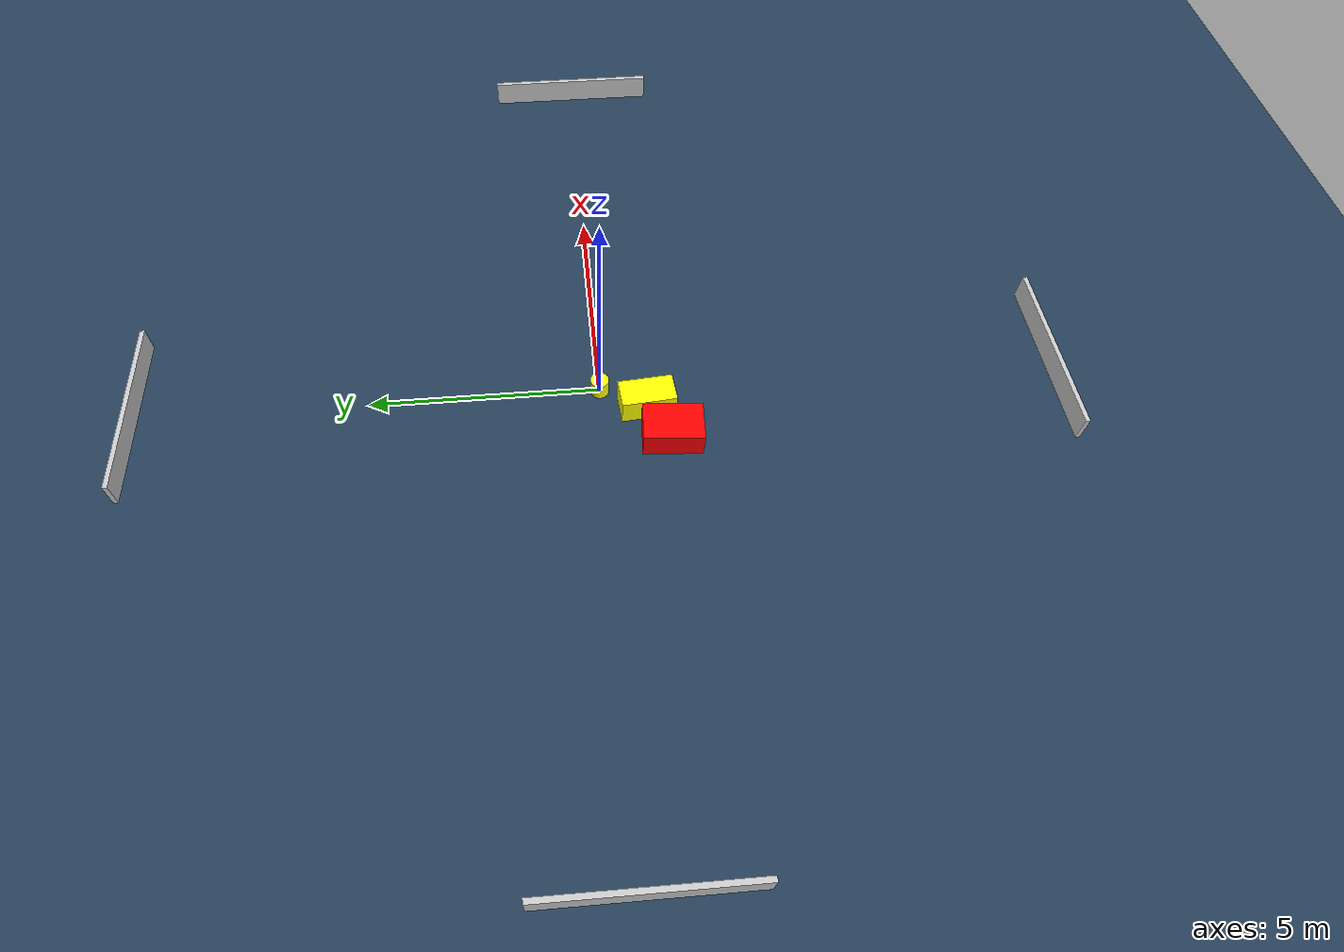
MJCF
<?xml version="1.0" ?>
<mujoco model="generated_environment">
  <option timestep="0.01" integrator="RK4" cone="elliptic"/>
  <default>
    <geom density="1"/>
  </default>
  <asset>
    <texture builtin="gradient" height="3072" name="skybox" rgb1="0.3 0.5 0.7" rgb2="0 0 0" type="skybox" width="512"/>
    <texture builtin="checker" height="300" name="groundplane" rgb1="0.2 0.3 0.4" rgb2="0.1 0.2 0.3" type="2d" width="300"/>
    <material name="groundplane" reflectance="0.2" texrepeat="5 5" texture="groundplane"/>
  </asset>
  <worldbody>
    <light dir="0 0 -1" directional="true" pos="0 0 1.5"/>
    <geom condim="3" friction="0.5 0.005 0.001" material="groundplane" name="floor" pos="0 0 0" size="0 0 0.05" type="plane"/>
    <body name="walls">
      <geom name="wall_1" condim="4" pos="-10.0 0.0 0.3" rgba="0.800000011920929 0.800000011920929 0.800000011920929 1.0" size="0.05 2.0 0.3" type="box"/>
      <geom name="wall_2" condim="4" pos="10.0 0.0 0.3" rgba="0.800000011920929 0.800000011920929 0.800000011920929 1.0" size="0.05 2.0 0.3" type="box"/>
      <geom name="wall_3" condim="4" pos="0.0 -10.0 0.3" rgba="0.800000011920929 0.800000011920929 0.800000011920929 1.0" size="2.0 0.05 0.3" type="box"/>
      <geom name="wall_4" condim="4" pos="0.0 10.0 0.3" rgba="0.800000011920929 0.800000011920929 0.800000011920929 1.0" size="2.0 0.05 0.3" type="box"/>
    </body>
    <body name="robot">
      <joint name="joint_x" type="slide" pos="0 0 0" axis="1 0 0"/>
      <joint name="joint_y" type="slide" pos="0 0 0" axis="0 1 0"/>
      <geom name="robot" type="cylinder" pos="0.0 0.0 0.2" size="0.2 0.2 0.0" mass="5.0" friction="1.0 0.005 0.0001" condim="4" rgba="1.0 1.0 0.0 1.0"/>
    </body>
    <body name="obstacle_1_movable">
      <geom name="obstacle_1_movable" condim="4" pos="-0.4838669640511406 -0.976372045374626 0.3" euler="0 0 94.67983924251791" friction="0.0 0.005 0.001" rgba="1.0 1.0 0.0 1.0" size="0.5920994081434812 0.31423615421729056 0.3" type="box" mass="0.1"/>
      <joint type="free"/>
    </body>
    <body name="obstacle_2_static">
      <geom name="obstacle_2_static" condim="4" pos="-1.3029891766193564 -1.4346412144789165 0.3" euler="0 0 86.06231332204781" friction="0.0 0.005 0.001" rgba="1.0 0.0 0.0 1.0" size="0.6367855180945021 0.43364030364128253 0.3" type="box"/>
    </body>
  </worldbody>
  <actuator>
    <motor name="actuator_x" joint="joint_x" gear="1" ctrlrange="-1 1"/>
    <motor name="actuator_y" joint="joint_y" gear="1" ctrlrange="-1 1"/>
  </actuator>
</mujoco>
